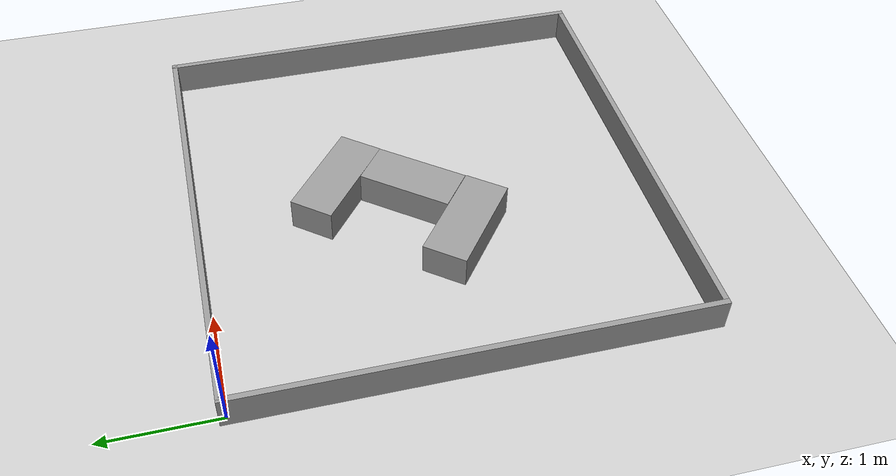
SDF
<sdf version='1.6'>
  <world name='default'>
    <light name='sun' type='directional'>
      <cast_shadows>1</cast_shadows>
      <pose frame=''>0 0 10 0 -0 0</pose>
      <diffuse>0.8 0.8 0.8 1</diffuse>
      <specular>0.1 0.1 0.1 1</specular>
      <attenuation>
        <range>1000</range>
        <constant>0.9</constant>
        <linear>0.01</linear>
        <quadratic>0.001</quadratic>
      </attenuation>
      <direction>-0.5 0.5 -1</direction>
    </light>
    <model name='ground_plane'>
      <static>1</static>
      <link name='link'>
        <collision name='collision'>
          <geometry>
            <plane>
              <normal>0 0 1</normal>
              <size>100 100</size>
            </plane>
          </geometry>
          <surface>
            <friction>
              <ode>
                <mu>100</mu>
                <mu2>50</mu2>
              </ode>
              <torsional>
                <ode/>
              </torsional>
            </friction>
            <contact>
              <ode/>
            </contact>
            <bounce/>
          </surface>
          <max_contacts>10</max_contacts>
        </collision>
        <visual name='visual'>
          <cast_shadows>0</cast_shadows>
          <geometry>
            <plane>
              <normal>0 0 1</normal>
              <size>100 100</size>
            </plane>
          </geometry>
          <material>
            <script>
              <uri>file://media/materials/scripts/gazebo.material</uri>
              <name>Gazebo/Grey</name>
            </script>
          </material>
        </visual>
        <self_collide>0</self_collide>
        <kinematic>0</kinematic>
        <gravity>1</gravity>
      </link>
    </model>
    <gravity>0 0 -9.8</gravity>
    <magnetic_field>6e-06 2.3e-05 -4.2e-05</magnetic_field>
    <atmosphere type='adiabatic'/>
    <physics name='default_physics' default='0' type='ode'>
      <max_step_size>0.001</max_step_size>
      <real_time_factor>1</real_time_factor>
      <real_time_update_rate>1000.0</real_time_update_rate>
    </physics>
    <scene>
      <ambient>0.4 0.4 0.4 1</ambient>
      <background>0.7 0.7 0.7 1</background>
      <shadows>1</shadows>
    </scene>
    <spherical_coordinates>
      <surface_model>EARTH_WGS84</surface_model>
      <latitude_deg>0</latitude_deg>
      <longitude_deg>0</longitude_deg>
      <elevation>0</elevation>
      <heading_deg>0</heading_deg>
    </spherical_coordinates>
    <model name='Mundo_U'>
      <pose frame=''>1.49072 -1.49116 0 0 -0 0</pose>

      <link name='Wall_0'>
        <collision name='Wall_0_Collision'>
          <geometry>
            <box>
              <size>4.1 0.05 0.3</size>
            </box>
          </geometry>
          <pose frame=''>0 0 0.15 0 -0 0</pose>
          <max_contacts>10</max_contacts>
          <surface>
            <contact>
              <ode/>
            </contact>
            <bounce/>
            <friction>
              <torsional>
                <ode/>
              </torsional>
              <ode/>
            </friction>
          </surface>
        </collision>
        <visual name='Wall_0_Visual'>
          <pose frame=''>0 0 0.15 0 -0 0</pose>
          <geometry>
            <box>
              <size>4.1 0.05 0.3</size>
            </box>
          </geometry>
          <material>
            <script>
              <uri>file://media/materials/scripts/gazebo.material</uri>
              <name>Gazebo/Grey</name>
            </script>
            <ambient>1 1 1 1</ambient>
          </material>
        </visual>
        <pose frame=''>0.525 1.525 0 0 -0 0</pose>
        <self_collide>0</self_collide>
        <kinematic>0</kinematic>
        <gravity>1</gravity>
      </link>
      <link name='Wall_12'>
        <collision name='Wall_12_Collision'>
          <geometry>
            <box>
              <size>0.85 0.4 0.3</size>
            </box>
          </geometry>
          <pose frame=''>0 0 0.15 0 -0 0</pose>
          <max_contacts>10</max_contacts>
          <surface>
            <contact>
              <ode/>
            </contact>
            <bounce/>
            <friction>
              <torsional>
                <ode/>
              </torsional>
              <ode/>
            </friction>
          </surface>
        </collision>
        <visual name='Wall_12_Visual'>
          <pose frame=''>0 0 0.15 0 -0 0</pose>
          <geometry>
            <box>
              <size>0.85 0.4 0.3</size>
            </box>
          </geometry>
          <material>
            <script>
              <uri>file://media/materials/scripts/gazebo.material</uri>
              <name>Gazebo/Grey</name>
            </script>
            <ambient>1 1 1 1</ambient>
          </material>
        </visual>
        <pose frame=''>0.462259 -0.421981 0 0 -0 0.907811</pose>
        <self_collide>0</self_collide>
        <kinematic>0</kinematic>
        <gravity>1</gravity>
      </link>
      <link name='Wall_16'>
        <collision name='Wall_16_Collision'>
          <geometry>
            <box>
              <size>0.95 0.4 0.3</size>
            </box>
          </geometry>
          <pose frame=''>0 0 0.15 0 -0 0</pose>
          <max_contacts>10</max_contacts>
          <surface>
            <contact>
              <ode/>
            </contact>
            <bounce/>
            <friction>
              <torsional>
                <ode/>
              </torsional>
              <ode/>
            </friction>
          </surface>
        </collision>
        <visual name='Wall_16_Visual'>
          <pose frame=''>0 0 0.15 0 -0 0</pose>
          <geometry>
            <box>
              <size>0.95 0.4 0.3</size>
            </box>
          </geometry>
          <material>
            <script>
              <uri>file://media/materials/scripts/gazebo.material</uri>
              <name>Gazebo/Grey</name>
            </script>
            <ambient>1 1 1 1</ambient>
          </material>
        </visual>
        <pose frame=''>-0.136603 -0.751427 0 0 -0 2.47982</pose>
        <self_collide>0</self_collide>
        <kinematic>0</kinematic>
        <gravity>1</gravity>
      </link>
      <link name='Wall_18'>
        <collision name='Wall_18_Collision'>
          <geometry>
            <box>
              <size>0.95 0.4 0.3</size>
            </box>
          </geometry>
          <pose frame=''>0 0 0.15 0 -0 0</pose>
          <max_contacts>10</max_contacts>
          <surface>
            <contact>
              <ode/>
            </contact>
            <bounce/>
            <friction>
              <torsional>
                <ode/>
              </torsional>
              <ode/>
            </friction>
          </surface>
        </collision>
        <visual name='Wall_18_Visual'>
          <pose frame=''>0 0 0.15 0 -0 0</pose>
          <geometry>
            <box>
              <size>0.95 0.4 0.3</size>
            </box>
          </geometry>
          <material>
            <script>
              <uri>file://media/materials/scripts/gazebo.material</uri>
              <name>Gazebo/Grey</name>
            </script>
            <ambient>1 1 1 1</ambient>
          </material>
        </visual>
        <pose frame=''>0.635933 0.239221 0 0 -0 2.46685</pose>
        <self_collide>0</self_collide>
        <kinematic>0</kinematic>
        <gravity>1</gravity>
      </link>
      <link name='Wall_2'>
        <collision name='Wall_2_Collision'>
          <geometry>
            <box>
              <size>4.1 0.05 0.3</size>
            </box>
          </geometry>
          <pose frame=''>0 0 0.15 0 -0 0</pose>
          <max_contacts>10</max_contacts>
          <surface>
            <contact>
              <ode/>
            </contact>
            <bounce/>
            <friction>
              <torsional>
                <ode/>
              </torsional>
              <ode/>
            </friction>
          </surface>
        </collision>
        <visual name='Wall_2_Visual'>
          <pose frame=''>0 0 0.15 0 -0 0</pose>
          <geometry>
            <box>
              <size>4.1 0.05 0.3</size>
            </box>
          </geometry>
          <material>
            <script>
              <uri>file://media/materials/scripts/gazebo.material</uri>
              <name>Gazebo/Grey</name>
            </script>
            <ambient>1 1 1 1</ambient>
          </material>
        </visual>
        <pose frame=''>2.55 -0.5 0 0 0 -1.5708</pose>
        <self_collide>0</self_collide>
        <kinematic>0</kinematic>
        <gravity>1</gravity>
      </link>
      <link name='Wall_4'>
        <collision name='Wall_4_Collision'>
          <geometry>
            <box>
              <size>4.1 0.05 0.3</size>
            </box>
          </geometry>
          <pose frame=''>0 0 0.15 0 -0 0</pose>
          <max_contacts>10</max_contacts>
          <surface>
            <contact>
              <ode/>
            </contact>
            <bounce/>
            <friction>
              <torsional>
                <ode/>
              </torsional>
              <ode/>
            </friction>
          </surface>
        </collision>
        <visual name='Wall_4_Visual'>
          <pose frame=''>0 0 0.15 0 -0 0</pose>
          <geometry>
            <box>
              <size>4.1 0.05 0.3</size>
            </box>
          </geometry>
          <material>
            <script>
              <uri>file://media/materials/scripts/gazebo.material</uri>
              <name>Gazebo/Grey</name>
            </script>
            <ambient>1 1 1 1</ambient>
          </material>
        </visual>
        <pose frame=''>0.525 -2.525 0 0 -0 3.14159</pose>
        <self_collide>0</self_collide>
        <kinematic>0</kinematic>
        <gravity>1</gravity>
      </link>
      <link name='Wall_6'>
        <collision name='Wall_6_Collision'>
          <geometry>
            <box>
              <size>4.1 0.05 0.3</size>
            </box>
          </geometry>
          <pose frame=''>0 0 0.15 0 -0 0</pose>
          <max_contacts>10</max_contacts>
          <surface>
            <contact>
              <ode/>
            </contact>
            <bounce/>
            <friction>
              <torsional>
                <ode/>
              </torsional>
              <ode/>
            </friction>
          </surface>
        </collision>
        <visual name='Wall_6_Visual'>
          <pose frame=''>0 0 0.15 0 -0 0</pose>
          <geometry>
            <box>
              <size>4.1 0.05 0.3</size>
            </box>
          </geometry>
          <material>
            <script>
              <uri>file://media/materials/scripts/gazebo.material</uri>
              <name>Gazebo/Grey</name>
            </script>
            <ambient>1 1 1 1</ambient>
          </material>
        </visual>
        <pose frame=''>-1.525 -0.5 0 0 -0 1.5708</pose>
        <self_collide>0</self_collide>
        <kinematic>0</kinematic>
        <gravity>1</gravity>
      </link>
      <static>1</static>
    </model>

    <gui fullscreen='0'>
      <camera name='user_camera'>
        <pose frame=''>1.00981 -1.73451 9.07982 0 1.4498 1.5722</pose>
        <view_controller>orbit</view_controller>
        <projection_type>perspective</projection_type>
      </camera>
    </gui>
  </world>
</sdf>
